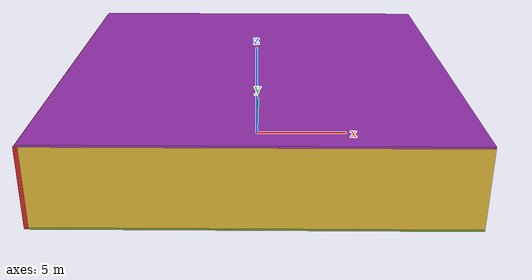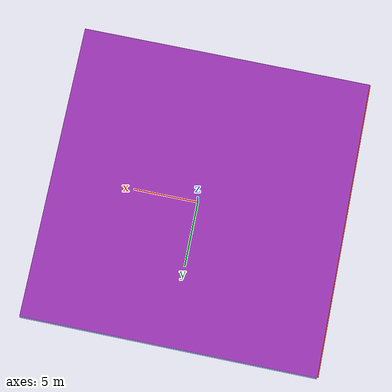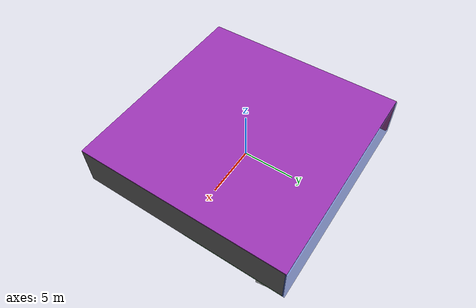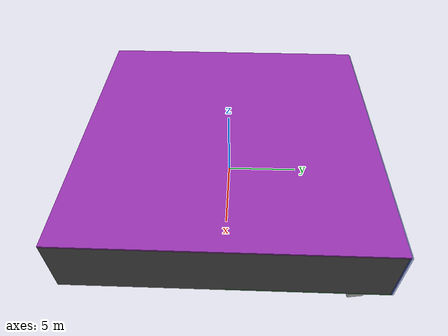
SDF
<sdf version="1.4">
 <world name="default">
  <physics type="ode">
   <max_step_size>0.001</max_step_size>
   <real_time_factor>1</real_time_factor>
   <real_time_update_rate>1000</real_time_update_rate>
   <gravity>0 0 -9.8</gravity>
  </physics>
  <scene><ambient>0.4 0.4 0.4 1</ambient><background>0.7 0.7 0.7 1</background><shadows>1</shadows></scene>
  <model name="Surrounding">
   <static>1</static>
   <link name="Ceiling">
    <collision name="Ceiling_Collision"><geometry><box><size>20 20 0.1</size></box></geometry></collision>
    <visual name="Ceiling_Visual">
     <geometry><box><size>20 20 0.1</size></box></geometry>
     <material>
      <script><uri>file://media/materials/scripts/gazebo.material</uri><name>Gazebo/Purple</name></script>
     </material>
    </visual>
    <pose>0 0 4.05 0 0 0</pose>
   </link>
   <link name="Wall_South">
    <collision name="Wall_South_Collision">
     <geometry><box><size>20 0 4</size></box></geometry>
     <pose>0 0 2 0 -0 0</pose>
    </collision>
    <visual name="Wall_South_Visual">
     <pose>0 0 2 0 -0 0</pose>
     <geometry><box><size>20 0 4</size></box></geometry>
     <material>
      <script><uri>file://media/materials/scripts/gazebo.material</uri><name>Gazebo/Gold</name></script>
     </material>
    </visual>
    <velocity_decay><linear>0</linear><angular>0</angular></velocity_decay>
    <pose>0 -10 0 0 -0 0</pose>
   </link>
   <link name="Wall_East">
    <collision name="Wall_21_Collision">
     <geometry><box><size>20 0 4</size></box></geometry>
     <pose>0 0 2 0 -0 0</pose>
    </collision>
    <visual name="Wall_21_Visual">
     <pose>0 0 2 0 -0 0</pose>
     <geometry><box><size>20 0 4</size></box></geometry>
     <material>
      <script><uri>file://media/materials/scripts/gazebo.material</uri><name>Gazebo/DarkGrey</name></script>
     </material>
    </visual>
    <velocity_decay><linear>0</linear><angular>0</angular></velocity_decay>
    <pose>10 0 0 0 -0 1.5708</pose>
   </link>
   <link name="Wall_North">
    <collision name="Wall_22_Collision">
     <geometry><box><size>20 0.2 4</size></box></geometry>
     <pose>0 0 2 0 -0 0</pose>
    </collision>
    <visual name="Wall_22_Visual">
     <pose>0 0 2 0 -0 0</pose>
     <geometry><box><size>20 0.2 4</size></box></geometry>
     <material>
      <script><uri>file://media/materials/scripts/gazebo.material</uri><name>Gazebo/BlueTransparent</name></script>
     </material>
    </visual>
    <velocity_decay><linear>0</linear><angular>0</angular></velocity_decay>
    <pose>0 10 0 0 -0 0</pose>
   </link>
   <link name="Wall_West">
    <collision name="Wall_23_Collision">
     <geometry><box><size>20 0.2 4</size></box></geometry>
     <pose>0 0 2 0 -0 0</pose>
    </collision>
    <visual name="Wall_23_Visual">
     <pose>0 0 2 0 -0 0</pose>
     <geometry><box><size>20 0.2 4</size></box></geometry>
     <material>
      <script><uri>file://media/materials/scripts/gazebo.material</uri><name>Gazebo/RedGlow</name></script>
     </material>
    </visual>
    <velocity_decay><linear>0</linear><angular>0</angular></velocity_decay>
    <pose>-10 0 0 0 0 -1.5708</pose>
   </link>
   <link name="Ground_link">
    <collision name="collision">
     <pose>0 0 .05 0 -0 0</pose>
     <geometry><box><size>20 20 0.1</size></box></geometry>
    </collision>
    <visual name="visual">
     <pose>0 0 .05 0 -0 0</pose>
     <geometry><box><size>20 20 0.1</size></box></geometry>
     <material>
      <script><uri>file://media/materials/scripts/gazebo.material</uri><name>Gazebo/GreenTransparent</name></script>
     </material>
    </visual>
   </link>
   <static>1</static>
  </model>
  <spherical_coordinates>
   <surface_model>EARTH_WGS84</surface_model>
   <latitude_deg>0</latitude_deg>
   <longitude_deg>0</longitude_deg>
   <elevation>0</elevation>
   <heading_deg>0</heading_deg>
  </spherical_coordinates>
  <light name="lightball_0" type="diffuse">
   <diffuse>0.8 0.8 0.8 1</diffuse>
   <specular>0.2 0.2 0.2 1</specular>
   <attenuation>
    <range>100</range>
    <constant>0.7</constant>
    <linear>0.01</linear>
    <quadratic>0.001</quadratic>
   </attenuation>
   <direction>-0.5 0.1 -0.9</direction>
   <pose>-0.462958349318 -7.16839281484 3.05612970297 0 0 0</pose>
  </light>
  <light name="lightball_1" type="diffuse">
   <diffuse>0.8 0.8 0.8 1</diffuse>
   <specular>0.2 0.2 0.2 1</specular>
   <attenuation>
    <range>100</range>
    <constant>0.7</constant>
    <linear>0.01</linear>
    <quadratic>0.001</quadratic>
   </attenuation>
   <direction>-0.5 0.1 -0.9</direction>
   <pose>1.59488969369 9.94451216219 0.944336542245 0 0 0</pose>
  </light>
  <include>
   <uri>model://construction_cone</uri>
   <pose>-7.7281225673 7.97999394907 0 0 0 1.9313932325</pose>
  </include>
  <include><uri>model://cabinet</uri><pose>1.72014615327 8.14197650701 0 0 0 3.1361233361</pose></include>
  <include>
   <uri>model://textured_shapes</uri>
   <pose>7.91658863493 7.6833718271 0 0 0 1.70881076539</pose>
  </include>
 </world>
</sdf>

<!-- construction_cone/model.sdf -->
<sdf version="1.5">
  <model name="Construction Cone">
    <link name="link">
      <collision name="collision">
        <geometry>
          <mesh>
            <scale>10 10 10</scale>
            <uri>file://isr-testbed/construction_cone/meshes/construction_cone.dae</uri>
          </mesh>
        </geometry>
      </collision>
      <visual name="visual">
        <geometry>
          <mesh>
            <scale>10 10 10</scale>
            <uri>file://isr-testbed/construction_cone/meshes/construction_cone.dae</uri>
          </mesh>
        </geometry>
      </visual>
    </link>
  </model>
</sdf>

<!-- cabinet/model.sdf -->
<sdf version="1.5">
  <model name="cabinet">
    <static>true</static>
    <link name="cabinet_bottom_plate">
      <inertial>
        <pose>0 0 -1 0 0 0</pose>
        <inertia>
          <ixx>2.050000</ixx>
          <ixy>0</ixy>
          <ixz>0</ixz>
          <iyy>2.050000</iyy>
          <iyz>0</iyz>
          <izz>2.050000</izz>
        </inertia>
        <mass>25.000000</mass>
      </inertial>
      <collision name="cabinet_bottom_plate_geom">
        <pose>0 0 0.010000 0 0 0</pose>
        <geometry>
          <box>
            <size>0.450000 0.450000 0.020000</size>
          </box>
        </geometry>
      </collision>
      <visual name="cabinet_bottom_plate_geom_visual">
        <pose>0 0 0.010000 0 0 0</pose>
        <geometry>
          <box>
            <size>0.450000 0.450000 0.020000</size>
          </box>
        </geometry>
        <material>
          <script>
            <uri>model://media/materials/scripts/gazebo.material</uri>
            <name>Gazebo/Wood</name>
          </script>
        </material>
      </visual>
      <collision name="cabinet_bottom_plate_geom_cabinet_back_plate">
        <pose>0.235000 0 0.510000 0 0 0</pose>
        <geometry>
          <box>
            <size>0.020000 0.450000 1.020000</size>
          </box>
        </geometry>
      </collision>
      <visual name="cabinet_bottom_plate_geom_cabinet_back_plate_visual">
        <pose>0.235000 0 0.510000 0 0 0</pose>
        <geometry>
          <box>
            <size>0.020000 0.450000 1.020000</size>
          </box>
        </geometry>
        <material>
          <script>
            <uri>model://media/materials/scripts/gazebo.material</uri>
            <name>Gazebo/Wood</name>
          </script>
        </material>
      </visual>
      <collision name="cabinet_bottom_plate_geom_cabinet_left_plate">
        <pose>0 0.235000 0.510000 0 0 0</pose>
        <geometry>
          <box>
            <size>0.450000 0.020000 1.020000</size>
          </box>
        </geometry>
      </collision>
      <visual name="cabinet_bottom_plate_geom_cabinet_left_plate_visual">
        <pose>0 0.235000 0.510000 0 0 0</pose>
        <geometry>
          <box>
            <size>0.450000 0.020000 1.020000</size>
          </box>
        </geometry>
        <material>
          <script>
            <uri>model://media/materials/scripts/gazebo.material</uri>
            <name>Gazebo/Wood</name>
          </script>
        </material>
      </visual>
      <collision name="cabinet_bottom_plate_geom_cabinet_middle_plate">
        <pose>0 0 0.510000 0 0 0</pose>
        <geometry>
          <box>
            <size>0.450000 0.450000 0.020000</size>
          </box>
        </geometry>
      </collision>
      <visual name="cabinet_bottom_plate_geom_cabinet_middle_plate_visual">
        <pose>0 0 0.510000 0 0 0</pose>
        <geometry>
          <box>
            <size>0.450000 0.450000 0.020000</size>
          </box>
        </geometry>
        <material>
          <script>
            <uri>model://media/materials/scripts/gazebo.material</uri>
            <name>Gazebo/Wood</name>
          </script>
        </material>
      </visual>
      <collision name="cabinet_bottom_plate_geom_cabinet_right_plate">
        <pose>0 -0.235000 0.510000 0 0 0</pose>
        <geometry>
          <box>
            <size>0.450000 0.020000 1.020000</size>
          </box>
        </geometry>
      </collision>
      <visual name="cabinet_bottom_plate_geom_cabinet_right_plate_visual">
        <pose>0 -0.235000 0.510000 0 0 0</pose>
        <geometry>
          <box>
            <size>0.450000 0.020000 1.020000</size>
          </box>
        </geometry>
        <material>
          <script>
            <uri>model://media/materials/scripts/gazebo.material</uri>
            <name>Gazebo/Wood</name>
          </script>
        </material>
      </visual>
      <collision name="cabinet_bottom_plate_geom_cabinet_top_plate">
        <pose>0 0 1.010000 0 0 0</pose>
        <geometry>
          <box>
            <size>0.450000 0.450000 0.020000</size>
          </box>
        </geometry>
      </collision>
      <visual name="cabinet_bottom_plate_geom_cabinet_top_plate_visual">
        <pose>0 0 1.010000 0 0 0</pose>
        <geometry>
          <box>
            <size>0.450000 0.450000 0.020000</size>
          </box>
        </geometry>
        <material>
          <script>
            <uri>model://media/materials/scripts/gazebo.material</uri>
            <name>Gazebo/Wood</name>
          </script>
        </material>
      </visual>
    </link>
  </model>
</sdf>

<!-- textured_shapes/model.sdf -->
<sdf version="1.6">
  <model name="textured_shapes">
    <pose>0 0 0.5 0 0 0</pose>
    <link name="box">
      <pose>0 -1.5 0 0 0 0</pose>
      <collision name="collision">
        <geometry>
          <box>
            <size>1 1 1</size>
          </box>
        </geometry>
      </collision>
      <visual name="visual">
        <geometry>
          <box>
            <size>1 1 1</size>
          </box>
        </geometry>
        <material>
          <script>
            <uri>model://../model_source/models/textured_shapes/materials/scripts</uri>
            <uri>model://../model_source/models/textured_shapes/materials/textures</uri>
            <name>TexturedShape/Squares</name>
          </script>
        </material>
      </visual>
    </link>
    <link name="sphere">
      <collision name="collision">
        <geometry>
          <sphere>
            <radius>0.5</radius>
          </sphere>
        </geometry>
      </collision>
      <visual name="visual">
        <geometry>
          <sphere>
            <radius>0.5</radius>
          </sphere>
        </geometry>
        <material>
          <script>
            <uri>model://../model_source/models/textured_shapes/materials/scripts</uri>
            <uri>model://../model_source/models/textured_shapes/materials/textures</uri>
            <name>TexturedShape/Squares</name>
          </script>
        </material>
      </visual>
    </link>
    <link name="cylinder">
      <pose>0 1.5 0 0 0 0</pose>
      <collision name="collision">
        <geometry>
          <cylinder>
            <radius>0.5</radius>
            <length>1</length>
          </cylinder>
        </geometry>
      </collision>
      <visual name="visual">
        <geometry>
          <cylinder>
            <radius>0.5</radius>
            <length>1</length>
          </cylinder>
        </geometry>
        <material>
          <script>
            <uri>model://../model_source/models/textured_shapes/materials/scripts</uri>
            <uri>model://../model_source/models/textured_shapes/materials/textures</uri>
            <name>TexturedShape/Squares</name>
          </script>
        </material>
      </visual>
    </link>
  </model>
</sdf>
